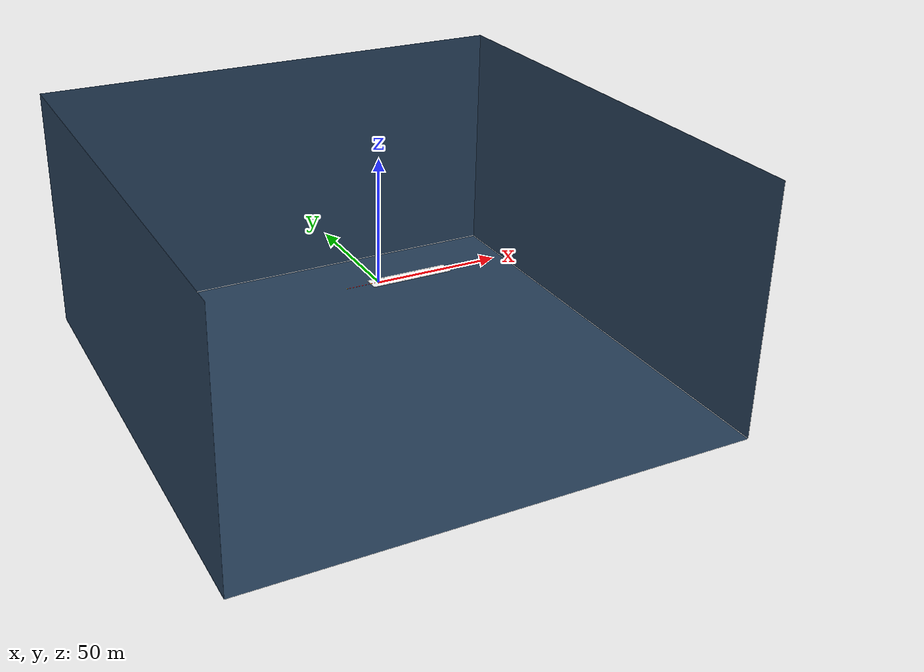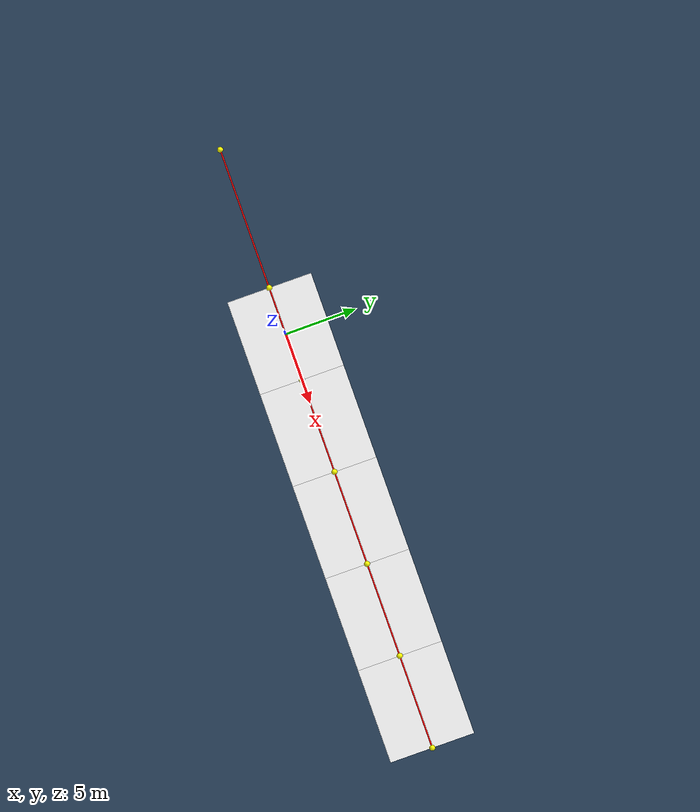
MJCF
<mujoco>
    <option gravity="0 0 -9810" density="1e-6" viscosity="9e-7"/>

    <asset>
        <texture name="grid" type="2d" builtin="checker" width="512" height="512" rgb1=".1 .2 .3" rgb2=".2 .3 .4"/>
        <material name="grid" texture="grid" texrepeat="0.1 0.1" texuniform="true" reflectance=".05"/>
    </asset>

    <default>
        <default class="fin">
            <geom type="box" size="3.3 3 0.1" rgba="1 1 1 1" mass="0.00016"/>
            <joint type="hinge" axis="0 1 0" damping="18" stiffness="600" limited="true" range="-10 10" pos="3.3 0 0"/>
            <motor gear="850" ctrllimited="true" ctrlrange="-2.5 2.5"/>
            <site type="sphere" pos="3.3 0 0.1" size="0.2" rgba="1 1 0 1"/>
        </default>
    </default>

    <worldbody>
        <light diffuse=".5 .5 .5" pos="0 0 900" dir="0 0 -1"/>

        <geom type="plane" size="100 100 .01" material="grid" pos="0 0 -40"/>
        <geom type="plane" size="100 50 .01" material="grid" pos="0 100 10" euler="90 0 0"/>
        <geom type="plane" size="100 50 .01" material="grid" pos="-100 0 10" euler="90 90 0"/>
        <geom type="plane" size="100 50 .01" material="grid" pos="100 0 10" euler="90 -90 0"/>

        <site class="fin" name="start" pos="-13.2 0 0.1"/>
        <body name="fin2" childclass="fin" euler="0 0 180">
                <geom/>
                <joint name="21"/>
                <site name="21"/>
                <body pos="-6.6 0 0">
                    <geom/>
                    <joint name="22"/>
                    <site name="22"/>
                    <body pos="-6.6 0 0">
                        <geom/>
                        <joint name="23"/>
                        <site name="23"/>
                        <body pos="-6.6 0 0">
                            <geom/>
                            <joint name="24"/>
                            <site name="24"/>
                            <body pos="-6.6 0 0">
                                <geom/>
                                <joint name="25"/>
                                <site name="25"/>
                                <site name="end" pos="-3.3 0 0.1"/>
                                <site name="amplitude1" pos="-3.3 0 0.1" type="sphere" size="0.0002"/>
                            </body>
                        </body>
                    </body>
                </body>
            </body>

    </worldbody>

    <sensor>
     <framepos name="amplitude1" objtype="site" objname="amplitude1"/>
    </sensor>

    <tendon>
        <spatial name="t1" width="0.05" rgba="1 0 0 1" stiffness="10">
            <site site="start"/>
            <site site="21"/>
            <site site="22"/>
            <site site="23"/>
            <site site="24"/>
            <site site="25"/>
            <site site="end"/>
        </spatial>
    </tendon>

    <actuator> <!-- fin 2 -->
        <motor class="fin" name="t1" tendon="t1"/>
    </actuator>
</mujoco>
